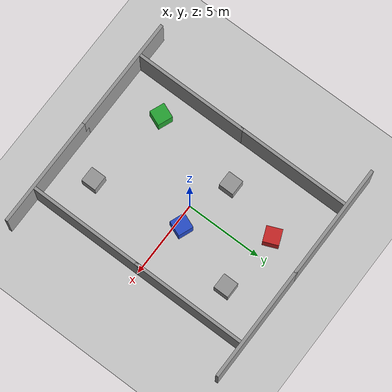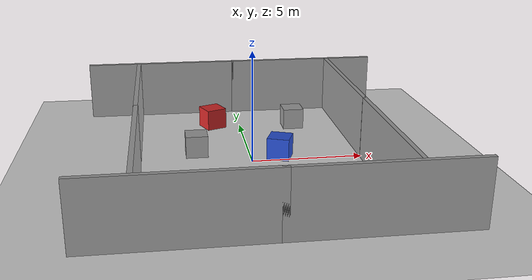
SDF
<sdf version="1.7">
 <world name="default">
  <light name="sun" type="directional">
   <pose>0 0 10 0 -0 0</pose>
   <diffuse>0.8 0.8 0.8 1</diffuse>
   <specular>0.2 0.2 0.2 1</specular>
   <attenuation>
    <range>1000</range>
    <constant>0.9</constant>
    <linear>0.01</linear>
    <quadratic>0.001</quadratic>
   </attenuation>
   <direction>-0.5 0.1 -0.9</direction>
   <spot><inner_angle>0</inner_angle><outer_angle>0</outer_angle><falloff>0</falloff></spot>
  </light>
  <model name="ground_plane">
   <static>1</static>
   <link name="link">
    <collision name="collision">
     <geometry><plane><normal>0 0 1</normal><size>100 100</size></plane></geometry>
     <surface>
      <contact><collide_bitmask>65535</collide_bitmask></contact>
      <friction><ode><mu>100</mu><mu2>50</mu2></ode></friction>
     </surface>
    </collision>
    <visual name="visual">
     <cast_shadows>0</cast_shadows>
     <geometry><plane><normal>0 0 1</normal><size>100 100</size></plane></geometry>
     <material>
      <script><uri>file://media/materials/scripts/gazebo.material</uri><name>Gazebo/Grey</name></script>
     </material>
    </visual>
   </link>
  </model>
  <gravity>0 0 -9.8</gravity>
  <magnetic_field>6e-06 2.3e-05 -4.2e-05</magnetic_field>
  <atmosphere type="adiabatic"/>
  <physics type="ode">
   <max_step_size>0.001</max_step_size>
   <real_time_factor>1</real_time_factor>
   <real_time_update_rate>1000</real_time_update_rate>
  </physics>
  <scene><ambient>0.4 0.4 0.4 1</ambient><background>0.7 0.7 0.7 1</background><shadows>1</shadows></scene>
  <spherical_coordinates>
   <surface_model>EARTH_WGS84</surface_model>
   <latitude_deg>0</latitude_deg>
   <longitude_deg>0</longitude_deg>
   <elevation>0</elevation>
   <heading_deg>0</heading_deg>
  </spherical_coordinates>
  <model name="grey_wall">
   <static>1</static>
   <link name="link">
    <pose>0 0 1.4 0 -0 0</pose>
    <collision name="collision"><geometry><box><size>7.5 0.2 2.8</size></box></geometry></collision>
    <visual name="visual">
     <cast_shadows>0</cast_shadows>
     <geometry><box><size>7.5 0.2 2.8</size></box></geometry>
     <material>
      <script>
       <uri>model://grey_wall/materials/scripts</uri>
       <uri>model://grey_wall/materials/textures</uri>
       <name>vrc/grey_wall</name>
      </script>
     </material>
    </visual>
   </link>
   <pose>3.76571 -7.5 0 0 -0 0</pose>
  </model>
  <model name="grey_wall_0_clone">
   <static>1</static>
   <link name="link">
    <pose>0 0 1.4 0 -0 0</pose>
    <collision name="collision"><geometry><box><size>7.5 0.2 2.8</size></box></geometry></collision>
    <visual name="visual">
     <cast_shadows>0</cast_shadows>
     <geometry><box><size>7.5 0.2 2.8</size></box></geometry>
     <material>
      <script>
       <uri>model://grey_wall/materials/scripts</uri>
       <uri>model://grey_wall/materials/textures</uri>
       <name>vrc/grey_wall</name>
      </script>
     </material>
    </visual>
   </link>
   <pose>-5 -3.65 0 0 0 -1.57174</pose>
  </model>
  <model name="grey_wall_0_clone_clone">
   <static>1</static>
   <link name="link">
    <pose>0 0 1.4 0 -0 0</pose>
    <collision name="collision"><geometry><box><size>7.5 0.2 2.8</size></box></geometry></collision>
    <visual name="visual">
     <cast_shadows>0</cast_shadows>
     <geometry><box><size>7.5 0.2 2.8</size></box></geometry>
     <material>
      <script>
       <uri>model://grey_wall/materials/scripts</uri>
       <uri>model://grey_wall/materials/textures</uri>
       <name>vrc/grey_wall</name>
      </script>
     </material>
    </visual>
   </link>
   <pose>-5 3.65 0 0 0 -1.57174</pose>
  </model>
  <model name="grey_wall_0_clone_0">
   <static>1</static>
   <link name="link">
    <pose>0 0 1.4 0 -0 0</pose>
    <collision name="collision"><geometry><box><size>7.5 0.2 2.8</size></box></geometry></collision>
    <visual name="visual">
     <cast_shadows>0</cast_shadows>
     <geometry><box><size>7.5 0.2 2.8</size></box></geometry>
     <material>
      <script>
       <uri>model://grey_wall/materials/scripts</uri>
       <uri>model://grey_wall/materials/textures</uri>
       <name>vrc/grey_wall</name>
      </script>
     </material>
    </visual>
   </link>
   <pose>-3.7977 7.5 0 0 -0 0</pose>
  </model>
  <model name="grey_wall_0_clone_1">
   <static>1</static>
   <link name="link">
    <pose>0 0 1.4 0 -0 0</pose>
    <collision name="collision"><geometry><box><size>7.5 0.2 2.8</size></box></geometry></collision>
    <visual name="visual">
     <cast_shadows>0</cast_shadows>
     <geometry><box><size>7.5 0.2 2.8</size></box></geometry>
     <material>
      <script>
       <uri>model://grey_wall/materials/scripts</uri>
       <uri>model://grey_wall/materials/textures</uri>
       <name>vrc/grey_wall</name>
      </script>
     </material>
    </visual>
   </link>
   <pose>3.61881 7.5 0 0 -0 0</pose>
  </model>
  <model name="grey_wall_0_clone_clone_clone">
   <static>1</static>
   <link name="link">
    <pose>0 0 1.4 0 -0 0</pose>
    <collision name="collision"><geometry><box><size>7.5 0.2 2.8</size></box></geometry></collision>
    <visual name="visual">
     <cast_shadows>0</cast_shadows>
     <geometry><box><size>7.5 0.2 2.8</size></box></geometry>
     <material>
      <script>
       <uri>model://grey_wall/materials/scripts</uri>
       <uri>model://grey_wall/materials/textures</uri>
       <name>vrc/grey_wall</name>
      </script>
     </material>
    </visual>
   </link>
   <pose>5 3.65 0 0 0 -1.57174</pose>
  </model>
  <model name="grey_wall_0_clone_clone_clone_0">
   <static>1</static>
   <link name="link">
    <pose>0 0 1.4 0 -0 0</pose>
    <collision name="collision"><geometry><box><size>7.5 0.2 2.8</size></box></geometry></collision>
    <visual name="visual">
     <cast_shadows>0</cast_shadows>
     <geometry><box><size>7.5 0.2 2.8</size></box></geometry>
     <material>
      <script>
       <uri>model://grey_wall/materials/scripts</uri>
       <uri>model://grey_wall/materials/textures</uri>
       <name>vrc/grey_wall</name>
      </script>
     </material>
    </visual>
   </link>
   <pose>5 -3.65 0 0 0 -1.57174</pose>
  </model>
  <model name="Red_Box">
   <link name="link">
    <inertial>
     <mass>1</mass>
     <inertia>
      <ixx>0.166667</ixx>
      <ixy>0</ixy>
      <ixz>0</ixz>
      <iyy>0.166667</iyy>
      <iyz>0</iyz>
      <izz>0.166667</izz>
     </inertia>
    </inertial>
    <pose>0 0 0 0 -0 0.393269</pose>
    <visual name="visual">
     <geometry><box><size>1 1 1</size></box></geometry>
     <material>
      <script><name>Gazebo/Red</name><uri>file://media/materials/scripts/gazebo.material</uri></script>
      <shader type="pixel"><normal_map>__default__</normal_map></shader>
      <ambient>1 0 0 1</ambient>
      <diffuse>1 0 0 1</diffuse>
      <specular>0.1 0.1 0.1 1</specular>
      <emissive>0 0 0 1</emissive>
     </material>
    </visual>
    <collision name="collision">
     <geometry><box><size>1 1 1</size></box></geometry>
     <surface>
      <friction>
       <ode><mu>1</mu><mu2>1</mu2><fdir1>0 0 0</fdir1><slip1>0</slip1><slip2>0</slip2></ode>
       <torsional>
        <coefficient>1</coefficient>
        <patch_radius>0</patch_radius>
        <surface_radius>0</surface_radius>
        <use_patch_radius>1</use_patch_radius>
        <ode><slip>0</slip></ode>
       </torsional>
      </friction>
      <bounce><restitution_coefficient>0</restitution_coefficient><threshold>1e+06</threshold></bounce>
      <contact>
       <collide_without_contact>0</collide_without_contact>
       <collide_without_contact_bitmask>1</collide_without_contact_bitmask>
       <collide_bitmask>1</collide_bitmask>
       <ode>
        <soft_cfm>0</soft_cfm>
        <soft_erp>0.2</soft_erp>
        <kp>1e+13</kp>
        <kd>1</kd>
        <max_vel>0.01</max_vel>
        <min_depth>0</min_depth>
       </ode>
       <bullet>
        <split_impulse>1</split_impulse>
        <split_impulse_penetration_threshold>-0.01</split_impulse_penetration_threshold>
        <soft_cfm>0</soft_cfm>
        <soft_erp>0.2</soft_erp>
        <kp>1e+13</kp>
        <kd>1</kd>
       </bullet>
      </contact>
     </surface>
    </collision>
   </link>
   <static>0</static>
   <pose>-1.35859 5.03765 0.499995 9e-06 4e-06 -3.2e-05</pose>
  </model>
  <model name="Green_Box">
   <link name="link">
    <inertial>
     <mass>1</mass>
     <inertia>
      <ixx>0.166667</ixx>
      <ixy>0</ixy>
      <ixz>0</ixz>
      <iyy>0.166667</iyy>
      <iyz>0</iyz>
      <izz>0.166667</izz>
     </inertia>
    </inertial>
    <visual name="visual">
     <geometry><box><size>1 1 1</size></box></geometry>
     <material>
      <script><name>Gazebo/Green</name><uri>file://media/materials/scripts/gazebo.material</uri></script>
      <shader type="pixel"><normal_map>__default__</normal_map></shader>
      <ambient>0 1 0 1</ambient>
      <diffuse>0 1 0 1</diffuse>
      <specular>0.1 0.1 0.1 1</specular>
      <emissive>0 0 0 1</emissive>
     </material>
    </visual>
    <collision name="collision">
     <geometry><box><size>1 1 1</size></box></geometry>
     <surface>
      <friction>
       <ode><mu>1</mu><mu2>1</mu2><fdir1>0 0 0</fdir1><slip1>0</slip1><slip2>0</slip2></ode>
       <torsional>
        <coefficient>1</coefficient>
        <patch_radius>0</patch_radius>
        <surface_radius>0</surface_radius>
        <use_patch_radius>1</use_patch_radius>
        <ode><slip>0</slip></ode>
       </torsional>
      </friction>
      <bounce><restitution_coefficient>0</restitution_coefficient><threshold>1e+06</threshold></bounce>
      <contact>
       <collide_without_contact>0</collide_without_contact>
       <collide_without_contact_bitmask>1</collide_without_contact_bitmask>
       <collide_bitmask>1</collide_bitmask>
       <ode>
        <soft_cfm>0</soft_cfm>
        <soft_erp>0.2</soft_erp>
        <kp>1e+13</kp>
        <kd>1</kd>
        <max_vel>0.01</max_vel>
        <min_depth>0</min_depth>
       </ode>
       <bullet>
        <split_impulse>1</split_impulse>
        <split_impulse_penetration_threshold>-0.01</split_impulse_penetration_threshold>
        <soft_cfm>0</soft_cfm>
        <soft_erp>0.2</soft_erp>
        <kp>1e+13</kp>
        <kd>1</kd>
       </bullet>
      </contact>
     </surface>
    </collision>
   </link>
   <static>0</static>
   <pose>-3.25244 -4.57911 0.499995 -1e-05 -0 -0.379877</pose>
  </model>
  <model name="Blue_Box">
   <link name="link">
    <inertial>
     <mass>1</mass>
     <inertia>
      <ixx>0.166667</ixx>
      <ixy>0</ixy>
      <ixz>0</ixz>
      <iyy>0.166667</iyy>
      <iyz>0</iyz>
      <izz>0.166667</izz>
     </inertia>
    </inertial>
    <visual name="visual">
     <geometry><box><size>1 1 1</size></box></geometry>
     <material>
      <script><name>Gazebo/Blue</name><uri>file://media/materials/scripts/gazebo.material</uri></script>
      <shader type="pixel"><normal_map>__default__</normal_map></shader>
      <ambient>0 0 1 1</ambient>
      <diffuse>0 0 1 1</diffuse>
      <specular>0.1 0.1 0.1 1</specular>
      <emissive>0 0 0 1</emissive>
     </material>
    </visual>
    <collision name="collision">
     <geometry><box><size>1 1 1</size></box></geometry>
     <surface>
      <friction>
       <ode><mu>1</mu><mu2>1</mu2><fdir1>0 0 0</fdir1><slip1>0</slip1><slip2>0</slip2></ode>
       <torsional>
        <coefficient>1</coefficient>
        <patch_radius>0</patch_radius>
        <surface_radius>0</surface_radius>
        <use_patch_radius>1</use_patch_radius>
        <ode><slip>0</slip></ode>
       </torsional>
      </friction>
      <bounce><restitution_coefficient>0</restitution_coefficient><threshold>1e+06</threshold></bounce>
      <contact>
       <collide_without_contact>0</collide_without_contact>
       <collide_without_contact_bitmask>1</collide_without_contact_bitmask>
       <collide_bitmask>1</collide_bitmask>
       <ode>
        <soft_cfm>0</soft_cfm>
        <soft_erp>0.2</soft_erp>
        <kp>1e+13</kp>
        <kd>1</kd>
        <max_vel>0.01</max_vel>
        <min_depth>0</min_depth>
       </ode>
       <bullet>
        <split_impulse>1</split_impulse>
        <split_impulse_penetration_threshold>-0.01</split_impulse_penetration_threshold>
        <soft_cfm>0</soft_cfm>
        <soft_erp>0.2</soft_erp>
        <kp>1e+13</kp>
        <kd>1</kd>
       </bullet>
      </contact>
     </surface>
    </collision>
   </link>
   <static>0</static>
   <pose>1.32075 0.40303 0.499995 -1e-05 -0 -0.373956</pose>
  </model>
  <model name="unit_box">
   <pose>2.25069 -5.37134 0.499995 1e-05 -0 5e-06</pose>
   <link name="link">
    <inertial>
     <mass>1</mass>
     <inertia>
      <ixx>0.166667</ixx>
      <ixy>0</ixy>
      <ixz>0</ixz>
      <iyy>0.166667</iyy>
      <iyz>0</iyz>
      <izz>0.166667</izz>
     </inertia>
    </inertial>
    <collision name="collision"><geometry><box><size>1 1 1</size></box></geometry></collision>
    <visual name="visual">
     <geometry><box><size>1 1 1</size></box></geometry>
     <material>
      <script><name>Gazebo/Grey</name><uri>file://media/materials/scripts/gazebo.material</uri></script>
     </material>
    </visual>
   </link>
  </model>
  <model name="unit_box_0">
   <pose>-2.40324 1.21654 0.499995 1e-05 -0 -5e-06</pose>
   <link name="link">
    <inertial>
     <mass>1</mass>
     <inertia>
      <ixx>0.166667</ixx>
      <ixy>0</ixy>
      <ixz>0</ixz>
      <iyy>0.166667</iyy>
      <iyz>0</iyz>
      <izz>0.166667</izz>
     </inertia>
    </inertial>
    <collision name="collision"><geometry><box><size>1 1 1</size></box></geometry></collision>
    <visual name="visual">
     <geometry><box><size>1 1 1</size></box></geometry>
     <material>
      <script><name>Gazebo/Grey</name><uri>file://media/materials/scripts/gazebo.material</uri></script>
     </material>
    </visual>
   </link>
  </model>
  <model name="unit_box_1">
   <pose>2.64583 4.63507 0.499995 0 1e-05 0</pose>
   <link name="link">
    <inertial>
     <mass>1</mass>
     <inertia>
      <ixx>0.166667</ixx>
      <ixy>0</ixy>
      <ixz>0</ixz>
      <iyy>0.166667</iyy>
      <iyz>0</iyz>
      <izz>0.166667</izz>
     </inertia>
    </inertial>
    <collision name="collision"><geometry><box><size>1 1 1</size></box></geometry></collision>
    <visual name="visual">
     <geometry><box><size>1 1 1</size></box></geometry>
     <material>
      <script><name>Gazebo/Grey</name><uri>file://media/materials/scripts/gazebo.material</uri></script>
     </material>
    </visual>
   </link>
  </model>
  <model name="grey_wall_clone">
   <static>1</static>
   <link name="link">
    <pose>0 0 1.4 0 -0 0</pose>
    <collision name="collision"><geometry><box><size>7.5 0.2 2.8</size></box></geometry></collision>
    <visual name="visual">
     <cast_shadows>0</cast_shadows>
     <geometry><box><size>7.5 0.2 2.8</size></box></geometry>
     <material>
      <script>
       <uri>model://grey_wall/materials/scripts</uri>
       <uri>model://grey_wall/materials/textures</uri>
       <name>vrc/grey_wall</name>
      </script>
     </material>
    </visual>
   </link>
   <pose>-3.46162 -7.5 0 0 -0 0</pose>
  </model>
 </world>
</sdf>
